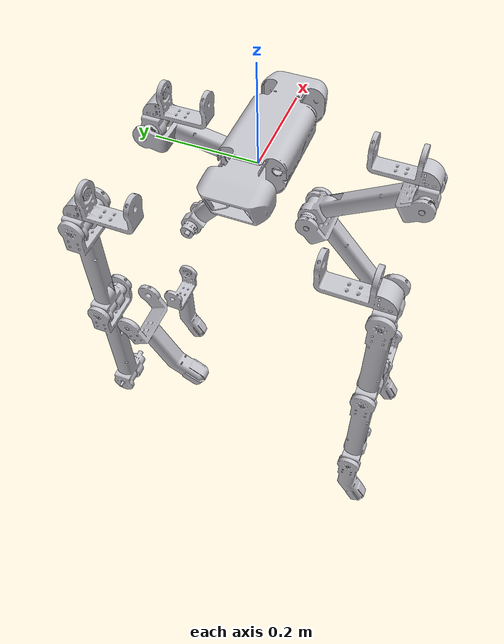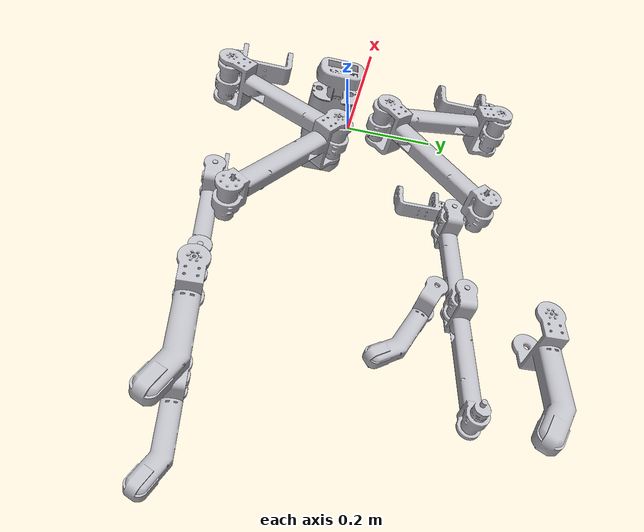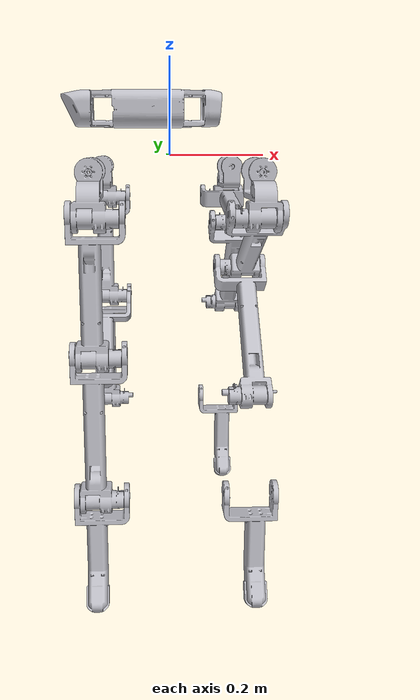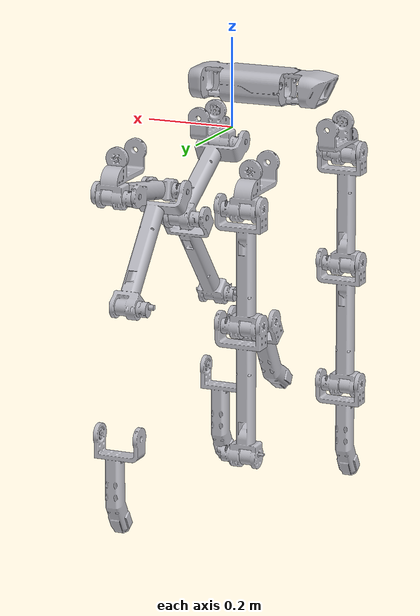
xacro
<?xml version="1.0" ?>
<robot name="quadruped" xmlns:xacro="http://www.ros.org/wiki/xacro">

<xacro:include filename="$(find quadruped_description)/urdf/materials.xacro" />
<xacro:include filename="$(find quadruped_description)/urdf/quadruped.trans" />
<xacro:include filename="$(find quadruped_description)/urdf/quadruped.gazebo" />
<link name="base_link">
  <inertial>
    <origin rpy="0 0 0" xyz="-4.417326064147873e-17 1.940982339223468e-16 0.04901709635318994"/>
    <mass value="201.8775331511704"/>
    <inertia ixx="7.191605" ixy="-1.1e-05" ixz="-0.0" iyy="2.82248" iyz="0.0" izz="9.659005"/>
  </inertial>
  <visual>
    <origin rpy="0 0 0" xyz="0 0 0"/>
    <geometry>
      <mesh filename="package://quadruped_description/meshes/base_link.stl" scale="0.001 0.001 0.001"/>
    </geometry>
    <material name="silver_default"/>
  </visual>
  <collision>
    <origin rpy="0 0 0" xyz="0 0 0"/>
    <geometry>
      <mesh filename="package://quadruped_description/meshes/base_link.stl" scale="0.001 0.001 0.001"/>
    </geometry>
  </collision>
</link>

<link name="link1FrontRight_1">
  <inertial>
    <origin rpy="0 0 0" xyz="0.006657525670384218 -0.008851869868314433 -0.0682785415205543"/>
    <mass value="0.6959462012084651"/>
    <inertia ixx="0.001039" ixy="4.5e-05" ixz="5.5e-05" iyy="0.000651" iyz="-0.000304" izz="0.000853"/>
  </inertial>
  <visual>
    <origin rpy="0 0 0" xyz="0.155 0.272 0.028"/>
    <geometry>
      <mesh filename="package://quadruped_description/meshes/link1FrontRight_1.stl" scale="0.001 0.001 0.001"/>
    </geometry>
    <material name="silver_default"/>
  </visual>
  <collision>
    <origin rpy="0 0 0" xyz="0.155 0.272 0.028"/>
    <geometry>
      <mesh filename="package://quadruped_description/meshes/link1FrontRight_1.stl" scale="0.001 0.001 0.001"/>
    </geometry>
  </collision>
</link>

<link name="link1BackLeft_1">
  <inertial>
    <origin rpy="0 0 0" xyz="-0.006657525670384523 0.008851869868314655 -0.068278541520555"/>
    <mass value="0.6959462012084651"/>
    <inertia ixx="0.001039" ixy="4.5e-05" ixz="-5.5e-05" iyy="0.000651" iyz="0.000304" izz="0.000853"/>
  </inertial>
  <visual>
    <origin rpy="0 0 0" xyz="-0.155 -0.272 0.028"/>
    <geometry>
      <mesh filename="package://quadruped_description/meshes/link1BackLeft_1.stl" scale="0.001 0.001 0.001"/>
    </geometry>
    <material name="silver_default"/>
  </visual>
  <collision>
    <origin rpy="0 0 0" xyz="-0.155 -0.272 0.028"/>
    <geometry>
      <mesh filename="package://quadruped_description/meshes/link1BackLeft_1.stl" scale="0.001 0.001 0.001"/>
    </geometry>
  </collision>
</link>

<link name="link1FrontLeft_1">
  <inertial>
    <origin rpy="0 0 0" xyz="-0.006632742807460124 -0.00889229477475234 -0.06827854152055422"/>
    <mass value="0.6959462012084651"/>
    <inertia ixx="0.00104" ixy="-4.6e-05" ixz="-5.5e-05" iyy="0.000651" iyz="-0.000304" izz="0.000853"/>
  </inertial>
  <visual>
    <origin rpy="0 0 0" xyz="-0.155 0.272 0.028"/>
    <geometry>
      <mesh filename="package://quadruped_description/meshes/link1FrontLeft_1.stl" scale="0.001 0.001 0.001"/>
    </geometry>
    <material name="silver_default"/>
  </visual>
  <collision>
    <origin rpy="0 0 0" xyz="-0.155 0.272 0.028"/>
    <geometry>
      <mesh filename="package://quadruped_description/meshes/link1FrontLeft_1.stl" scale="0.001 0.001 0.001"/>
    </geometry>
  </collision>
</link>

<link name="link1BackRight_1">
  <inertial>
    <origin rpy="0 0 0" xyz="0.006632742807465342 0.008892294774752674 -0.06827854152054838"/>
    <mass value="0.6959462012084651"/>
    <inertia ixx="0.00104" ixy="-4.6e-05" ixz="5.5e-05" iyy="0.000651" iyz="0.000304" izz="0.000853"/>
  </inertial>
  <visual>
    <origin rpy="0 0 0" xyz="0.155 -0.272 0.028"/>
    <geometry>
      <mesh filename="package://quadruped_description/meshes/link1BackRight_1.stl" scale="0.001 0.001 0.001"/>
    </geometry>
    <material name="silver_default"/>
  </visual>
  <collision>
    <origin rpy="0 0 0" xyz="0.155 -0.272 0.028"/>
    <geometry>
      <mesh filename="package://quadruped_description/meshes/link1BackRight_1.stl" scale="0.001 0.001 0.001"/>
    </geometry>
  </collision>
</link>

<link name="link2FrontRight_1">
  <inertial>
    <origin rpy="0 0 0" xyz="0.04835689837404811 3.830943160643141e-06 -0.20537104153229047"/>
    <mass value="0.8659841478355499"/>
    <inertia ixx="0.00672" ixy="-0.0" ixz="0.000112" iyy="0.007032" iyz="-1e-05" izz="0.000496"/>
  </inertial>
  <visual>
    <origin rpy="0 0 0" xyz="0.196988 0.2908 0.100978"/>
    <geometry>
      <mesh filename="package://quadruped_description/meshes/link2FrontRight_1.stl" scale="0.001 0.001 0.001"/>
    </geometry>
    <material name="silver_default"/>
  </visual>
  <collision>
    <origin rpy="0 0 0" xyz="0.196988 0.2908 0.100978"/>
    <geometry>
      <mesh filename="package://quadruped_description/meshes/link2FrontRight_1.stl" scale="0.001 0.001 0.001"/>
    </geometry>
  </collision>
</link>

<link name="link2BackLeft_1">
  <inertial>
    <origin rpy="0 0 0" xyz="-0.04835689837407542 -3.830943160643141e-06 -0.20537104153228802"/>
    <mass value="0.8659841478355499"/>
    <inertia ixx="0.00672" ixy="-0.0" ixz="-0.000112" iyy="0.007032" iyz="1e-05" izz="0.000496"/>
  </inertial>
  <visual>
    <origin rpy="0 0 0" xyz="-0.196988 -0.2908 0.100978"/>
    <geometry>
      <mesh filename="package://quadruped_description/meshes/link2BackLeft_1.stl" scale="0.001 0.001 0.001"/>
    </geometry>
    <material name="silver_default"/>
  </visual>
  <collision>
    <origin rpy="0 0 0" xyz="-0.196988 -0.2908 0.100978"/>
    <geometry>
      <mesh filename="package://quadruped_description/meshes/link2BackLeft_1.stl" scale="0.001 0.001 0.001"/>
    </geometry>
  </collision>
</link>

<link name="link2FrontLeft_1">
  <inertial>
    <origin rpy="0 0 0" xyz="-0.04835589963015452 -3.830943160254563e-06 -0.20537104153228863"/>
    <mass value="0.8659841478355499"/>
    <inertia ixx="0.00672" ixy="-0.0" ixz="-0.000112" iyy="0.007032" iyz="-1.1e-05" izz="0.000496"/>
  </inertial>
  <visual>
    <origin rpy="0 0 0" xyz="-0.197012 0.2908 0.100978"/>
    <geometry>
      <mesh filename="package://quadruped_description/meshes/link2FrontLeft_1.stl" scale="0.001 0.001 0.001"/>
    </geometry>
    <material name="silver_default"/>
  </visual>
  <collision>
    <origin rpy="0 0 0" xyz="-0.197012 0.2908 0.100978"/>
    <geometry>
      <mesh filename="package://quadruped_description/meshes/link2FrontLeft_1.stl" scale="0.001 0.001 0.001"/>
    </geometry>
  </collision>
</link>

<link name="link2BackRight_1">
  <inertial>
    <origin rpy="0 0 0" xyz="0.04835589963013884 3.830943160532119e-06 -0.2053710415322919"/>
    <mass value="0.8659841478355499"/>
    <inertia ixx="0.00672" ixy="-0.0" ixz="0.000112" iyy="0.007032" iyz="1.1e-05" izz="0.000496"/>
  </inertial>
  <visual>
    <origin rpy="0 0 0" xyz="0.197012 -0.2908 0.100978"/>
    <geometry>
      <mesh filename="package://quadruped_description/meshes/link2BackRight_1.stl" scale="0.001 0.001 0.001"/>
    </geometry>
    <material name="silver_default"/>
  </visual>
  <collision>
    <origin rpy="0 0 0" xyz="0.197012 -0.2908 0.100978"/>
    <geometry>
      <mesh filename="package://quadruped_description/meshes/link2BackRight_1.stl" scale="0.001 0.001 0.001"/>
    </geometry>
  </collision>
</link>

<link name="link3FrontRight_1">
  <inertial>
    <origin rpy="0 0 0" xyz="0.04813339309281514 2.7563511140193953e-06 -0.22442742342969874"/>
    <mass value="0.8975642770404472"/>
    <inertia ixx="0.00868" ixy="-0.0" ixz="0.000137" iyy="0.008993" iyz="1.4e-05" izz="0.000506"/>
  </inertial>
  <visual>
    <origin rpy="0 0 0" xyz="0.196988 0.290812 0.357157"/>
    <geometry>
      <mesh filename="package://quadruped_description/meshes/link3FrontRight_1.stl" scale="0.001 0.001 0.001"/>
    </geometry>
    <material name="silver_default"/>
  </visual>
  <collision>
    <origin rpy="0 0 0" xyz="0.196988 0.290812 0.357157"/>
    <geometry>
      <mesh filename="package://quadruped_description/meshes/link3FrontRight_1.stl" scale="0.001 0.001 0.001"/>
    </geometry>
  </collision>
</link>

<link name="link3BackLeft__1">
  <inertial>
    <origin rpy="0 0 0" xyz="-0.04813239309295386 -2.7563511141304176e-06 -0.2244274234296863"/>
    <mass value="0.8975642770404472"/>
    <inertia ixx="0.00868" ixy="-0.0" ixz="-0.000137" iyy="0.008993" iyz="-1.4e-05" izz="0.000506"/>
  </inertial>
  <visual>
    <origin rpy="0 0 0" xyz="-0.196987 -0.290812 0.357157"/>
    <geometry>
      <mesh filename="package://quadruped_description/meshes/link3BackLeft__1.stl" scale="0.001 0.001 0.001"/>
    </geometry>
    <material name="silver_default"/>
  </visual>
  <collision>
    <origin rpy="0 0 0" xyz="-0.196987 -0.290812 0.357157"/>
    <geometry>
      <mesh filename="package://quadruped_description/meshes/link3BackLeft__1.stl" scale="0.001 0.001 0.001"/>
    </geometry>
  </collision>
</link>

<link name="link3FrontLeft_1">
  <inertial>
    <origin rpy="0 0 0" xyz="-0.04813211460166608 -3.756351113770595e-06 -0.22442742342969108"/>
    <mass value="0.8975642770404472"/>
    <inertia ixx="0.00868" ixy="-0.0" ixz="-0.000137" iyy="0.008993" iyz="1.3e-05" izz="0.000506"/>
  </inertial>
  <visual>
    <origin rpy="0 0 0" xyz="-0.197012 0.290787 0.357157"/>
    <geometry>
      <mesh filename="package://quadruped_description/meshes/link3FrontLeft_1.stl" scale="0.001 0.001 0.001"/>
    </geometry>
    <material name="silver_default"/>
  </visual>
  <collision>
    <origin rpy="0 0 0" xyz="-0.197012 0.290787 0.357157"/>
    <geometry>
      <mesh filename="package://quadruped_description/meshes/link3FrontLeft_1.stl" scale="0.001 0.001 0.001"/>
    </geometry>
  </collision>
</link>

<link name="link3BackRight_1">
  <inertial>
    <origin rpy="0 0 0" xyz="0.04813311460158362 2.7563511140193953e-06 -0.2244274234297003"/>
    <mass value="0.8975642770404472"/>
    <inertia ixx="0.00868" ixy="-0.0" ixz="0.000137" iyy="0.008993" iyz="-1.3e-05" izz="0.000506"/>
  </inertial>
  <visual>
    <origin rpy="0 0 0" xyz="0.197013 -0.290788 0.357157"/>
    <geometry>
      <mesh filename="package://quadruped_description/meshes/link3BackRight_1.stl" scale="0.001 0.001 0.001"/>
    </geometry>
    <material name="silver_default"/>
  </visual>
  <collision>
    <origin rpy="0 0 0" xyz="0.197013 -0.290788 0.357157"/>
    <geometry>
      <mesh filename="package://quadruped_description/meshes/link3BackRight_1.stl" scale="0.001 0.001 0.001"/>
    </geometry>
  </collision>
</link>

<link name="link4FrontRight_1">
  <inertial>
    <origin rpy="0 0 0" xyz="0.04421036643334067 -0.006254524034631337 -0.10914906216532516"/>
    <mass value="0.3651188269789837"/>
    <inertia ixx="0.001791" ixy="-5e-06" ixz="-7.1e-05" iyy="0.0019" iyz="-0.000199" izz="0.000283"/>
  </inertial>
  <visual>
    <origin rpy="0 0 0" xyz="0.196988 0.290825 0.641575"/>
    <geometry>
      <mesh filename="package://quadruped_description/meshes/link4FrontRight_1.stl" scale="0.001 0.001 0.001"/>
    </geometry>
    <material name="silver_default"/>
  </visual>
  <collision>
    <origin rpy="0 0 0" xyz="0.196988 0.290825 0.641575"/>
    <geometry>
      <mesh filename="package://quadruped_description/meshes/link4FrontRight_1.stl" scale="0.001 0.001 0.001"/>
    </geometry>
  </collision>
</link>

<link name="link4BackLeft_1">
  <inertial>
    <origin rpy="0 0 0" xyz="-0.044409351302915484 -0.0062299379155703605 -0.10914906216527487"/>
    <mass value="0.3651188269789837"/>
    <inertia ixx="0.001791" ixy="5e-06" ixz="7.1e-05" iyy="0.0019" iyz="-0.000199" izz="0.000283"/>
  </inertial>
  <visual>
    <origin rpy="0 0 0" xyz="-0.196987 -0.290825 0.641575"/>
    <geometry>
      <mesh filename="package://quadruped_description/meshes/link4BackLeft_1.stl" scale="0.001 0.001 0.001"/>
    </geometry>
    <material name="silver_default"/>
  </visual>
  <collision>
    <origin rpy="0 0 0" xyz="-0.196987 -0.290825 0.641575"/>
    <geometry>
      <mesh filename="package://quadruped_description/meshes/link4BackLeft_1.stl" scale="0.001 0.001 0.001"/>
    </geometry>
  </collision>
</link>

<link name="link4FrontLeft_1">
  <inertial>
    <origin rpy="0 0 0" xyz="-0.0444093513027308 -0.006229937915569972 -0.10914906216529474"/>
    <mass value="0.3651188269789837"/>
    <inertia ixx="0.001791" ixy="5e-06" ixz="7.1e-05" iyy="0.0019" iyz="-0.000199" izz="0.000283"/>
  </inertial>
  <visual>
    <origin rpy="0 0 0" xyz="-0.197012 0.290775 0.641575"/>
    <geometry>
      <mesh filename="package://quadruped_description/meshes/link4FrontLeft_1.stl" scale="0.001 0.001 0.001"/>
    </geometry>
    <material name="silver_default"/>
  </visual>
  <collision>
    <origin rpy="0 0 0" xyz="-0.197012 0.290775 0.641575"/>
    <geometry>
      <mesh filename="package://quadruped_description/meshes/link4FrontLeft_1.stl" scale="0.001 0.001 0.001"/>
    </geometry>
  </collision>
</link>

<link name="link4FrontRight__1__1">
  <inertial>
    <origin rpy="0 0 0" xyz="0.04441036643333646 -0.006254524034631559 -0.10914906216532572"/>
    <mass value="0.3651188269789837"/>
    <inertia ixx="0.001791" ixy="-5e-06" ixz="-7.1e-05" iyy="0.0019" iyz="-0.000199" izz="0.000283"/>
  </inertial>
  <visual>
    <origin rpy="0 0 0" xyz="0.197013 -0.290775 0.641575"/>
    <geometry>
      <mesh filename="package://quadruped_description/meshes/link4FrontRight__1__1.stl" scale="0.001 0.001 0.001"/>
    </geometry>
    <material name="silver_default"/>
  </visual>
  <collision>
    <origin rpy="0 0 0" xyz="0.197013 -0.290775 0.641575"/>
    <geometry>
      <mesh filename="package://quadruped_description/meshes/link4FrontRight__1__1.stl" scale="0.001 0.001 0.001"/>
    </geometry>
  </collision>
</link>

<joint name="joint1FrontRight" type="continuous">
  <origin rpy="0 0 0" xyz="-0.155 -0.272 -0.028"/>
  <parent link="base_link"/>
  <child link="link1FrontRight_1"/>
  <axis xyz="0.0 -1.0 0.0"/>
</joint>

<joint name="joint1BackLeft" type="continuous">
  <origin rpy="0 0 0" xyz="0.155 0.272 -0.028"/>
  <parent link="base_link"/>
  <child link="link1BackLeft_1"/>
  <axis xyz="-0.0 1.0 -0.0"/>
</joint>

<joint name="joint1FrontLeft" type="continuous">
  <origin rpy="0 0 0" xyz="0.155 -0.272 -0.028"/>
  <parent link="base_link"/>
  <child link="link1FrontLeft_1"/>
  <axis xyz="-0.0 -1.0 -0.0"/>
</joint>

<joint name="joint1BackRight" type="continuous">
  <origin rpy="0 0 0" xyz="-0.155 0.272 -0.028"/>
  <parent link="base_link"/>
  <child link="link1BackRight_1"/>
  <axis xyz="-0.0 1.0 0.0"/>
</joint>

<joint name="joint2FrontRight" type="continuous">
  <origin rpy="0 0 0" xyz="-0.041988 -0.0188 -0.072978"/>
  <parent link="link1FrontRight_1"/>
  <child link="link2FrontRight_1"/>
  <axis xyz="-1.0 -0.0 0.0"/>
</joint>

<joint name="joint2BackLeft" type="continuous">
  <origin rpy="0 0 0" xyz="0.041988 0.0188 -0.072978"/>
  <parent link="link1BackLeft_1"/>
  <child link="link2BackLeft_1"/>
  <axis xyz="1.0 0.0 -0.0"/>
</joint>

<joint name="joint2FrontLeft" type="continuous">
  <origin rpy="0 0 0" xyz="0.042012 -0.0188 -0.072978"/>
  <parent link="link1FrontLeft_1"/>
  <child link="link2FrontLeft_1"/>
  <axis xyz="1.0 -0.0 -0.0"/>
</joint>

<joint name="joint2BackRight" type="continuous">
  <origin rpy="0 0 0" xyz="-0.042012 0.0188 -0.072978"/>
  <parent link="link1BackRight_1"/>
  <child link="link2BackRight_1"/>
  <axis xyz="-1.0 0.0 -0.0"/>
</joint>

<joint name="joint3FrontRight" type="continuous">
  <origin rpy="0 0 0" xyz="0.0 -1.2e-05 -0.256179"/>
  <parent link="link2FrontRight_1"/>
  <child link="link3FrontRight_1"/>
  <axis xyz="-1.0 -0.0 -0.0"/>
</joint>

<joint name="joint3BackLeft" type="continuous">
  <origin rpy="0 0 0" xyz="-1e-06 1.2e-05 -0.256179"/>
  <parent link="link2BackLeft_1"/>
  <child link="link3BackLeft__1"/>
  <axis xyz="1.0 0.0 -0.0"/>
</joint>

<joint name="joint3FrontLeft" type="continuous">
  <origin rpy="0 0 0" xyz="0.0 1.3e-05 -0.256179"/>
  <parent link="link2FrontLeft_1"/>
  <child link="link3FrontLeft_1"/>
  <axis xyz="1.0 0.0 -0.0"/>
</joint>

<joint name="joint3BackRight" type="continuous">
  <origin rpy="0 0 0" xyz="-1e-06 -1.2e-05 -0.256179"/>
  <parent link="link2BackRight_1"/>
  <child link="link3BackRight_1"/>
  <axis xyz="-1.0 -0.0 -0.0"/>
</joint>

<joint name="joint4FrontRight" type="continuous">
  <origin rpy="0 0 0" xyz="0.0 -1.3e-05 -0.284418"/>
  <parent link="link3FrontRight_1"/>
  <child link="link4FrontRight_1"/>
  <axis xyz="-1.0 -0.0 -0.0"/>
</joint>

<joint name="joint4BackLeft" type="continuous">
  <origin rpy="0 0 0" xyz="0.0 1.3e-05 -0.284418"/>
  <parent link="link3BackLeft__1"/>
  <child link="link4BackLeft_1"/>
  <axis xyz="1.0 0.0 -0.0"/>
</joint>

<joint name="joint4FrontLeft" type="continuous">
  <origin rpy="0 0 0" xyz="0.0 1.2e-05 -0.284418"/>
  <parent link="link3FrontLeft_1"/>
  <child link="link4FrontLeft_1"/>
  <axis xyz="1.0 0.0 -0.0"/>
</joint>

<joint name="joint4BackRight" type="continuous">
  <origin rpy="0 0 0" xyz="0.0 -1.3e-05 -0.284418"/>
  <parent link="link3BackRight_1"/>
  <child link="link4FrontRight__1__1"/>
  <axis xyz="-1.0 -0.0 -0.0"/>
</joint>

</robot>

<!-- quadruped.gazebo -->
<robot name="quadruped" xmlns:xacro="http://www.ros.org/wiki/xacro" >

<xacro:property name="body_color" value="Gazebo/Silver" />

<gazebo>
  <plugin filename="libgazebo_ros_control.so" name="control"/>
</gazebo>
<gazebo reference="base_link">
  <material>${body_color}</material>
  <mu1>0.2</mu1>
  <mu2>0.2</mu2>
  <selfCollide>true</selfCollide>
  <gravity>true</gravity>
</gazebo>

<gazebo reference="link1FrontRight_1">
  <material>${body_color}</material>
  <mu1>0.2</mu1>
  <mu2>0.2</mu2>
  <selfCollide>true</selfCollide>
</gazebo>

<gazebo reference="link1BackLeft_1">
  <material>${body_color}</material>
  <mu1>0.2</mu1>
  <mu2>0.2</mu2>
  <selfCollide>true</selfCollide>
</gazebo>

<gazebo reference="link1FrontLeft_1">
  <material>${body_color}</material>
  <mu1>0.2</mu1>
  <mu2>0.2</mu2>
  <selfCollide>true</selfCollide>
</gazebo>

<gazebo reference="link1BackRight_1">
  <material>${body_color}</material>
  <mu1>0.2</mu1>
  <mu2>0.2</mu2>
  <selfCollide>true</selfCollide>
</gazebo>

<gazebo reference="link2FrontRight_1">
  <material>${body_color}</material>
  <mu1>0.2</mu1>
  <mu2>0.2</mu2>
  <selfCollide>true</selfCollide>
</gazebo>

<gazebo reference="link2BackLeft_1">
  <material>${body_color}</material>
  <mu1>0.2</mu1>
  <mu2>0.2</mu2>
  <selfCollide>true</selfCollide>
</gazebo>

<gazebo reference="link2FrontLeft_1">
  <material>${body_color}</material>
  <mu1>0.2</mu1>
  <mu2>0.2</mu2>
  <selfCollide>true</selfCollide>
</gazebo>

<gazebo reference="link2BackRight_1">
  <material>${body_color}</material>
  <mu1>0.2</mu1>
  <mu2>0.2</mu2>
  <selfCollide>true</selfCollide>
</gazebo>

<gazebo reference="link3FrontRight_1">
  <material>${body_color}</material>
  <mu1>0.2</mu1>
  <mu2>0.2</mu2>
  <selfCollide>true</selfCollide>
</gazebo>

<gazebo reference="link3BackLeft__1">
  <material>${body_color}</material>
  <mu1>0.2</mu1>
  <mu2>0.2</mu2>
  <selfCollide>true</selfCollide>
</gazebo>

<gazebo reference="link3FrontLeft_1">
  <material>${body_color}</material>
  <mu1>0.2</mu1>
  <mu2>0.2</mu2>
  <selfCollide>true</selfCollide>
</gazebo>

<gazebo reference="link3BackRight_1">
  <material>${body_color}</material>
  <mu1>0.2</mu1>
  <mu2>0.2</mu2>
  <selfCollide>true</selfCollide>
</gazebo>

<gazebo reference="link4FrontRight_1">
  <material>${body_color}</material>
  <mu1>0.2</mu1>
  <mu2>0.2</mu2>
  <selfCollide>true</selfCollide>
</gazebo>

<gazebo reference="link4BackLeft_1">
  <material>${body_color}</material>
  <mu1>0.2</mu1>
  <mu2>0.2</mu2>
  <selfCollide>true</selfCollide>
</gazebo>

<gazebo reference="link4FrontLeft_1">
  <material>${body_color}</material>
  <mu1>0.2</mu1>
  <mu2>0.2</mu2>
  <selfCollide>true</selfCollide>
</gazebo>

<gazebo reference="link4FrontRight__1__1">
  <material>${body_color}</material>
  <mu1>0.2</mu1>
  <mu2>0.2</mu2>
  <selfCollide>true</selfCollide>
</gazebo>

</robot>
